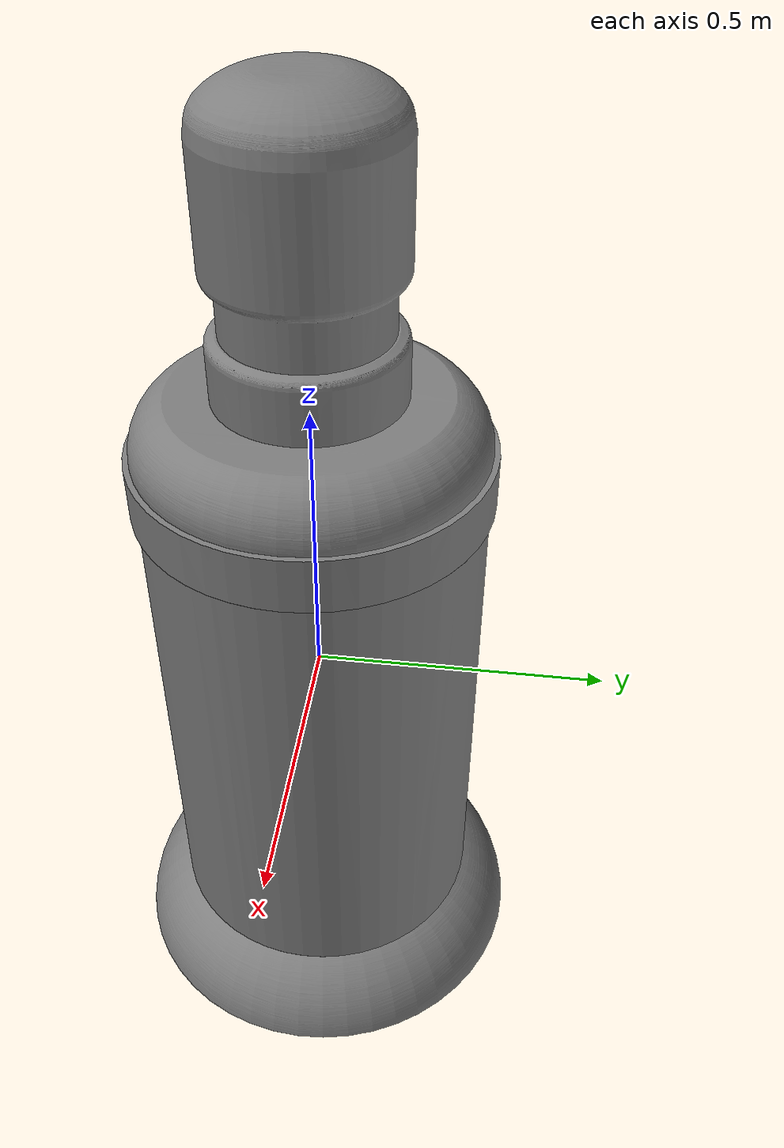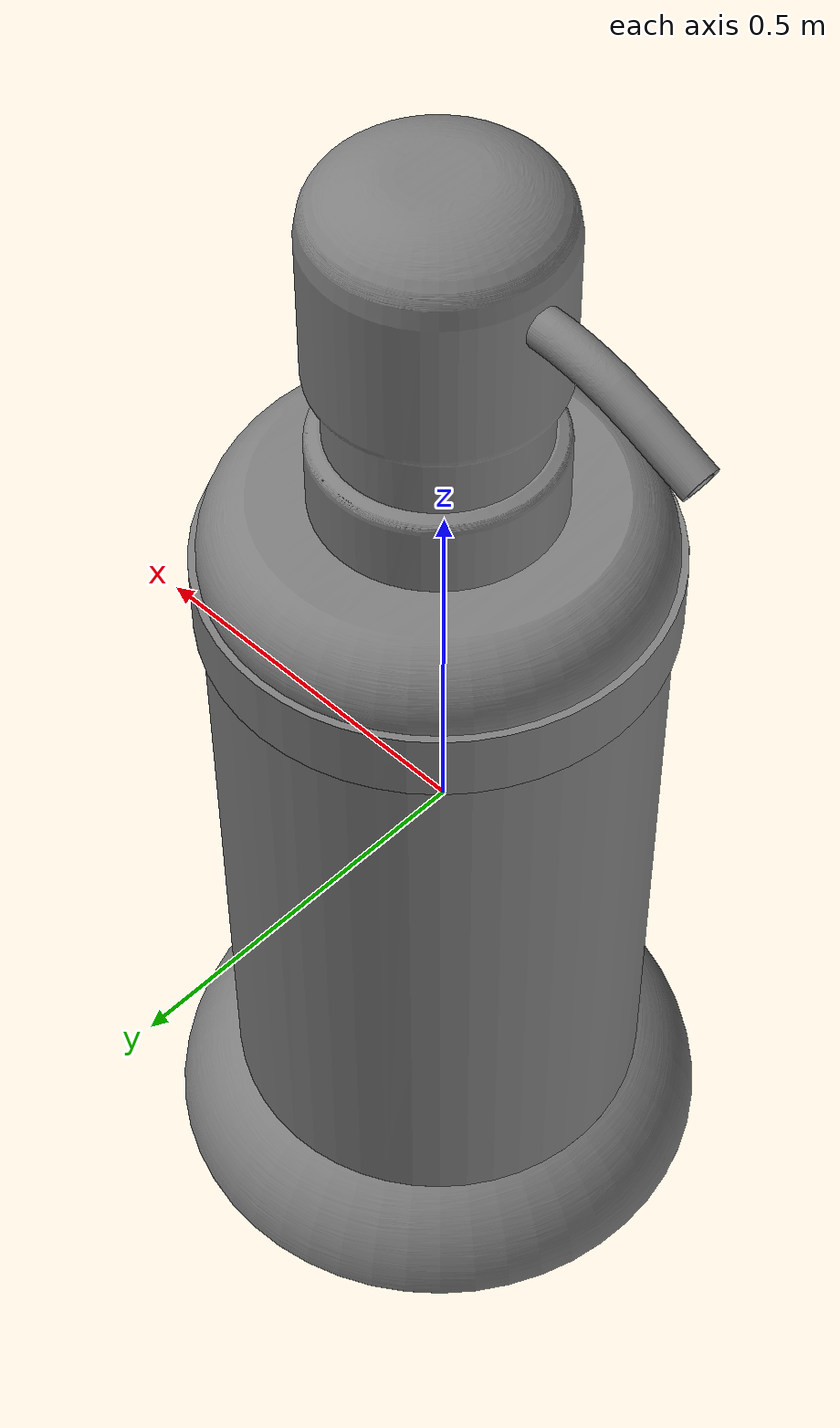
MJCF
<?xml version='1.0' encoding='UTF-8'?>
<mujoco model="partnet_0d1d667f-1098-4221-8241-25ae8246c215-2">
  <compiler angle="radian"/>
  <asset>
    <mesh name="original_10" content_type="model/obj" file="textured_objs/original_10.obj"/>
    <mesh name="original_15" content_type="model/obj" file="textured_objs/original_15.obj"/>
    <mesh name="original_16" content_type="model/obj" file="textured_objs/original_16.obj"/>
    <mesh name="original_13" content_type="model/obj" file="textured_objs/original_13.obj"/>
    <mesh name="original_11" content_type="model/obj" file="textured_objs/original_11.obj"/>
    <mesh name="original_4" content_type="model/obj" file="textured_objs/original_4.obj"/>
    <mesh name="original_3" content_type="model/obj" file="textured_objs/original_3.obj"/>
    <mesh name="original_2" content_type="model/obj" file="textured_objs/original_2.obj"/>
    <mesh name="original_8" content_type="model/obj" file="textured_objs/original_8.obj"/>
    <mesh name="original_6" content_type="model/obj" file="textured_objs/original_6.obj"/>
    <mesh name="original_12" content_type="model/obj" file="textured_objs/original_12.obj"/>
    <mesh name="original_7" content_type="model/obj" file="textured_objs/original_7.obj"/>
  </asset>
  <worldbody>
    <body name="base">
      <body name="link_2" quat="0.5 0.5 -0.5 -0.5">
        <geom type="mesh" mesh="original_4"/>
        <geom type="mesh" mesh="original_3"/>
        <geom type="mesh" mesh="original_2"/>
        <geom type="mesh" mesh="original_8"/>
        <geom type="mesh" mesh="original_6"/>
        <geom type="mesh" mesh="original_12"/>
        <geom type="mesh" mesh="original_7"/>
        <body name="link_1_helper" pos="-0.00287174 0 -0.00630403">
          <inertial pos="0 0 0" mass="1e-06" diaginertia="1e-10 1e-10 1e-10"/>
          <joint name="joint_4" pos="0 0 0" axis="0 1 0" type="slide" range="0 0.01"/>
          <body name="link_1">
            <joint name="joint_1" pos="0 0 0" axis="0 1 0"/>
            <geom pos="0.00287174 0 0.00630403" quat="1 0 0 0" type="mesh" mesh="original_13"/>
            <geom pos="0.00287174 0 0.00630403" quat="1 0 0 0" type="mesh" mesh="original_11"/>
            <body name="link_0_helper">
              <inertial pos="0 0 0" mass="1e-06" diaginertia="1e-10 1e-10 1e-10"/>
              <joint name="joint_3" pos="0 0 0" axis="0 -1 0" type="slide" range="0 0.1"/>
              <body name="link_0">
                <joint name="joint_0" pos="0 0 0" axis="0 1 0"/>
                <geom pos="0.00287174 0 0.00630403" quat="1 0 0 0" type="mesh" mesh="original_10"/>
                <geom pos="0.00287174 0 0.00630403" type="mesh" mesh="original_15"/>
                <geom pos="0.00287174 0 0.00630403" quat="1 0 0 0" type="mesh" mesh="original_16"/>
              </body>
            </body>
          </body>
        </body>
      </body>
    </body>
  </worldbody>
</mujoco>
